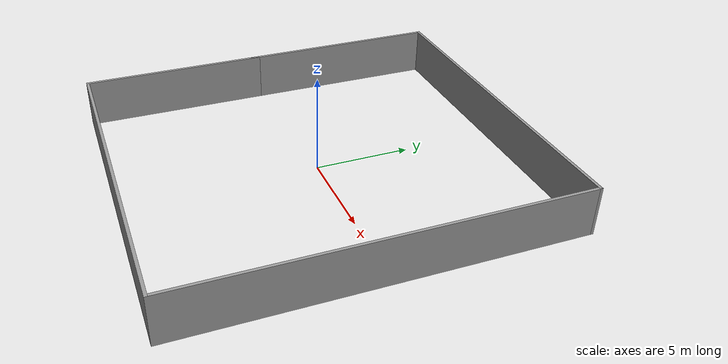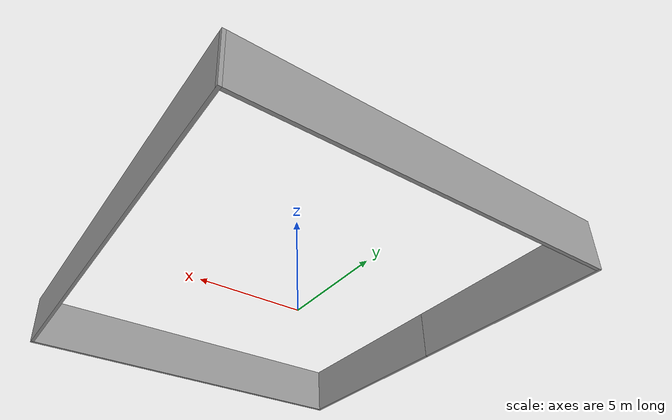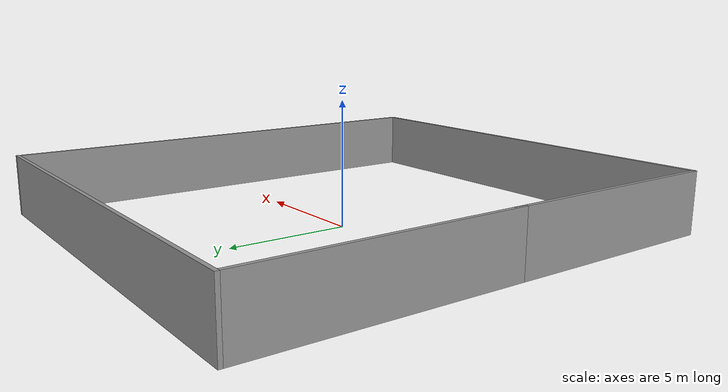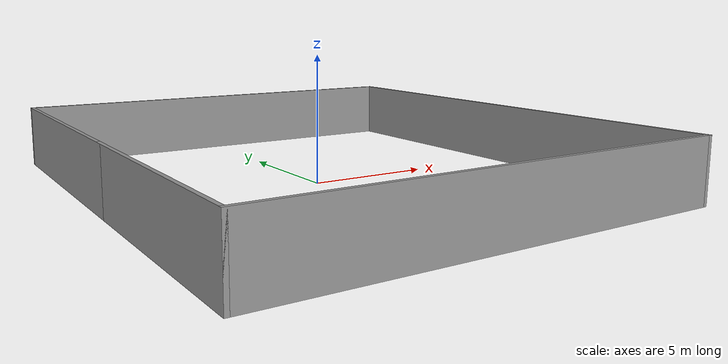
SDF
<?xml version='1.0'?>
<sdf version='1.7'>
  <model name='Untitled'>
    <pose>0.412005 -0.175138 0 0 -0 0</pose>
    <link name='Wall_56'>
      <collision name='Wall_56_Collision'>
        <geometry>
          <box>
            <size>9.75 0.15 2.5</size>
          </box>
        </geometry>
        <pose>0 0 1.25 0 -0 0</pose>
      </collision>
      <visual name='Wall_56_Visual'>
        <pose>0 0 1.25 0 -0 0</pose>
        <geometry>
          <box>
            <size>9.75 0.15 2.5</size>
          </box>
        </geometry>
        <material>
          <script>
            <uri>file://media/materials/scripts/gazebo.material</uri>
            <name>Gazebo/Grey</name>
          </script>
          <ambient>1 1 1 1</ambient>
        </material>
        <meta>
          <layer>0</layer>
        </meta>
      </visual>
      <pose>-8.925 -5.125 0 0 -0 -1.5708</pose>
    </link>
    <link name='Wall_57'>
      <collision name='Wall_57_Collision'>
        <geometry>
          <box>
            <size>18 0.15 2.5</size>
          </box>
        </geometry>
        <pose>0 0 1.25 0 -0 0</pose>
      </collision>
      <visual name='Wall_57_Visual'>
        <pose>0 0 1.25 0 -0 0</pose>
        <geometry>
          <box>
            <size>18 0.15 2.5</size>
          </box>
        </geometry>
        <material>
          <script>
            <uri>file://media/materials/scripts/gazebo.material</uri>
            <name>Gazebo/Grey</name>
          </script>
          <ambient>1 1 1 1</ambient>
        </material>
        <meta>
          <layer>0</layer>
        </meta>
      </visual>
      <pose>0 -9.925 0 0 -0 0</pose>
    </link>
    <link name='Wall_58'>
      <collision name='Wall_58_Collision'>
        <geometry>
          <box>
            <size>20 0.15 2.5</size>
          </box>
        </geometry>
        <pose>0 0 1.25 0 -0 0</pose>
      </collision>
      <visual name='Wall_58_Visual'>
        <pose>0 0 1.25 0 -0 0</pose>
        <geometry>
          <box>
            <size>20 0.15 2.5</size>
          </box>
        </geometry>
        <material>
          <script>
            <uri>file://media/materials/scripts/gazebo.material</uri>
            <name>Gazebo/Grey</name>
          </script>
          <ambient>1 1 1 1</ambient>
        </material>
        <meta>
          <layer>0</layer>
        </meta>
      </visual>
      <pose>8.925 0 0 0 -0 1.5708</pose>
    </link>
    <link name='Wall_59'>
      <collision name='Wall_59_Collision'>
        <geometry>
          <box>
            <size>18 0.15 2.5</size>
          </box>
        </geometry>
        <pose>0 0 1.25 0 -0 0</pose>
      </collision>
      <visual name='Wall_59_Visual'>
        <pose>0 0 1.25 0 -0 0</pose>
        <geometry>
          <box>
            <size>18 0.15 2.5</size>
          </box>
        </geometry>
        <material>
          <script>
            <uri>file://media/materials/scripts/gazebo.material</uri>
            <name>Gazebo/Grey</name>
          </script>
          <ambient>1 1 1 1</ambient>
        </material>
        <meta>
          <layer>0</layer>
        </meta>
      </visual>
      <pose>0 9.925 0 0 -0 3.14159</pose>
    </link>
    <link name='Wall_60'>
      <collision name='Wall_60_Collision'>
        <geometry>
          <box>
            <size>10.75 0.15 2.5</size>
          </box>
        </geometry>
        <pose>0 0 1.25 0 -0 0</pose>
      </collision>
      <visual name='Wall_60_Visual'>
        <pose>0 0 1.25 0 -0 0</pose>
        <geometry>
          <box>
            <size>10.75 0.15 2.5</size>
          </box>
        </geometry>
        <material>
          <script>
            <uri>file://media/materials/scripts/gazebo.material</uri>
            <name>Gazebo/Grey</name>
          </script>
          <ambient>1 1 1 1</ambient>
        </material>
        <meta>
          <layer>0</layer>
        </meta>
      </visual>
      <pose>-8.925 4.625 0 0 -0 -1.5708</pose>
    </link>
    <static>1</static>
  </model>
</sdf>
